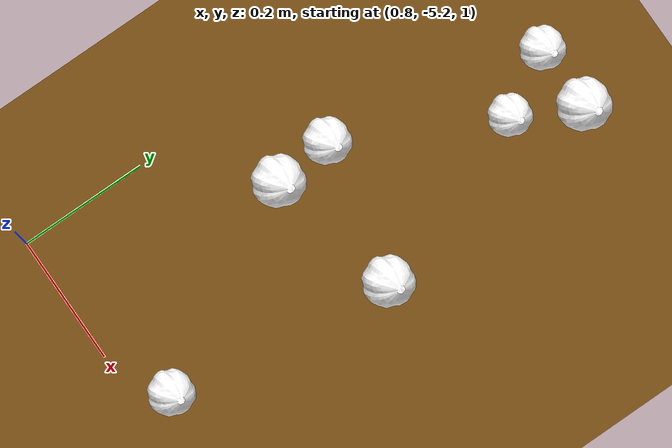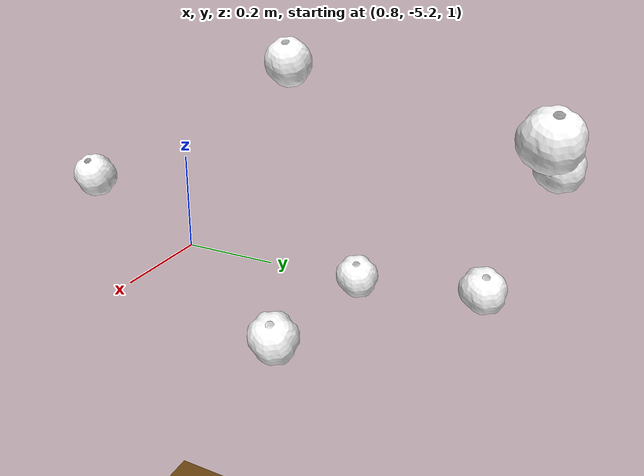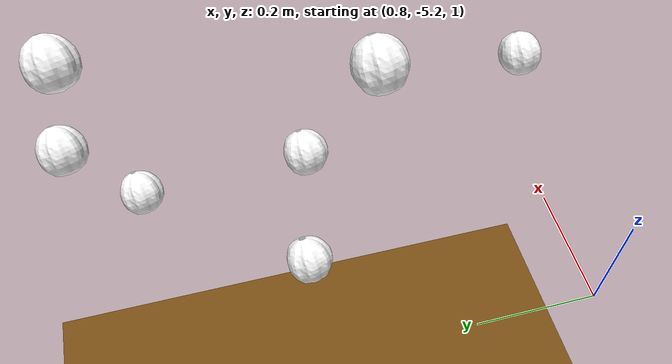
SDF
<sdf version="1.10">
 <world name="field">
  <model name="ground_plane">
   <static>true</static>
   <pose>0 0 -0.025 0 0 0</pose>
   <link name="ground_link">
    <collision name="collision"><geometry><box><size>22 14 0.05</size></box></geometry></collision>
    <visual name="visual">
     <geometry><box><size>22 14 0.05</size></box></geometry>
     <material><ambient>0.45 0.29 0.07 1</ambient><diffuse>0.45 0.29 0.07 1</diffuse></material>
    </visual>
   </link>
  </model>
  <model name="tomato_30_fruit_0">
   <static>true</static>
   <pose>0.97157693216541974 -4.8698195965206086 1.439069676920731 0 0 0</pose>
   <link name="fruit_link">
    <collision name="fruit_collision">
     <geometry><sphere><radius>0.040359216238994702</radius></sphere></geometry>
    </collision>
    <visual name="fruit_visual">
     <geometry>
      <mesh>
       <uri>model://tomato_fruit/meshes/fruit.dae</uri>
       <scale>0.080718432477989405 0.080718432477989405 0.080718432477989405</scale>
      </mesh>
     </geometry>
     <material>
      <ambient>1 1 1 1</ambient>
      <diffuse>1 1 1 1</diffuse>
      <pbr>
       <metal>
        <albedo_map>model://tomato_0/materials/textures/AG15frt4.png</albedo_map>
        <metalness>0</metalness>
        <roughness>0.4</roughness>
       </metal>
      </pbr>
     </material>
    </visual>
   </link>
  </model>
  <model name="tomato_30_fruit_1">
   <static>true</static>
   <pose>0.93178580171471626 -4.7616701508730443 1.0847385455471206 0 0 0</pose>
   <link name="fruit_link">
    <collision name="fruit_collision">
     <geometry><sphere><radius>0.039006174222252658</radius></sphere></geometry>
    </collision>
    <visual name="fruit_visual">
     <geometry>
      <mesh>
       <uri>model://tomato_fruit/meshes/fruit.dae</uri>
       <scale>0.078012348444505317 0.078012348444505317 0.078012348444505317</scale>
      </mesh>
     </geometry>
     <material>
      <ambient>1 1 1 1</ambient>
      <diffuse>1 1 1 1</diffuse>
      <pbr>
       <metal>
        <albedo_map>model://tomato_0/materials/textures/AG15frt1.png</albedo_map>
        <metalness>0</metalness>
        <roughness>0.4</roughness>
       </metal>
      </pbr>
     </material>
    </visual>
   </link>
  </model>
  <model name="tomato_30_fruit_2">
   <static>true</static>
   <pose>1.1119743875390766 -5.1482364698474887 1.2593996133526393 0 0 0</pose>
   <link name="fruit_link">
    <collision name="fruit_collision">
     <geometry><sphere><radius>0.036425670198521165</radius></sphere></geometry>
    </collision>
    <visual name="fruit_visual">
     <geometry>
      <mesh>
       <uri>model://tomato_fruit/meshes/fruit.dae</uri>
       <scale>0.07285134039704233 0.07285134039704233 0.07285134039704233</scale>
      </mesh>
     </geometry>
     <material>
      <ambient>1 1 1 1</ambient>
      <diffuse>1 1 1 1</diffuse>
      <pbr>
       <metal>
        <albedo_map>model://tomato_0/materials/textures/AG15frt4.png</albedo_map>
        <metalness>0</metalness>
        <roughness>0.4</roughness>
       </metal>
      </pbr>
     </material>
    </visual>
   </link>
  </model>
  <model name="tomato_30_fruit_3">
   <static>true</static>
   <pose>1.147269955028515 -4.8043249175127238 1.0738772094507989 0 0 0</pose>
   <link name="fruit_link">
    <collision name="fruit_collision">
     <geometry><sphere><radius>0.042334963771350868</radius></sphere></geometry>
    </collision>
    <visual name="fruit_visual">
     <geometry>
      <mesh>
       <uri>model://tomato_fruit/meshes/fruit.dae</uri>
       <scale>0.084669927542701737 0.084669927542701737 0.084669927542701737</scale>
      </mesh>
     </geometry>
     <material>
      <ambient>1 1 1 1</ambient>
      <diffuse>1 1 1 1</diffuse>
      <pbr>
       <metal>
        <albedo_map>model://tomato_0/materials/textures/AG15frt4.png</albedo_map>
        <metalness>0</metalness>
        <roughness>0.4</roughness>
       </metal>
      </pbr>
     </material>
    </visual>
   </link>
  </model>
  <model name="tomato_31_fruit_0">
   <static>true</static>
   <pose>1.0566773404864809 -4.5347559090507952 1.1718466183655836 0 0 0</pose>
   <link name="fruit_link">
    <collision name="fruit_collision">
     <geometry><sphere><radius>0.034834568744716771</radius></sphere></geometry>
    </collision>
    <visual name="fruit_visual">
     <geometry>
      <mesh>
       <uri>model://tomato_fruit/meshes/fruit.dae</uri>
       <scale>0.069669137489433541 0.069669137489433541 0.069669137489433541</scale>
      </mesh>
     </geometry>
     <material>
      <ambient>1 1 1 1</ambient>
      <diffuse>1 1 1 1</diffuse>
      <pbr>
       <metal>
        <albedo_map>model://tomato_0/materials/textures/AG15frt1.png</albedo_map>
        <metalness>0</metalness>
        <roughness>0.4</roughness>
       </metal>
      </pbr>
     </material>
    </visual>
   </link>
  </model>
  <model name="tomato_31_fruit_1">
   <static>true</static>
   <pose>1.1164597028555676 -4.4709680070952036 1.3988947512748255 0 0 0</pose>
   <link name="fruit_link">
    <collision name="fruit_collision">
     <geometry><sphere><radius>0.04125714422740509</radius></sphere></geometry>
    </collision>
    <visual name="fruit_visual">
     <geometry>
      <mesh>
       <uri>model://tomato_fruit/meshes/fruit.dae</uri>
       <scale>0.082514288454810181 0.082514288454810181 0.082514288454810181</scale>
      </mesh>
     </geometry>
     <material>
      <ambient>1 1 1 1</ambient>
      <diffuse>1 1 1 1</diffuse>
      <pbr>
       <metal>
        <albedo_map>model://tomato_0/materials/textures/AG15frt1.png</albedo_map>
        <metalness>0</metalness>
        <roughness>0.4</roughness>
       </metal>
      </pbr>
     </material>
    </visual>
   </link>
  </model>
  <model name="tomato_31_fruit_2">
   <static>true</static>
   <pose>1.0178434174487081 -4.4651662017040863 1.341284952673941 0 0 0</pose>
   <link name="fruit_link">
    <collision name="fruit_collision">
     <geometry><sphere><radius>0.034875212518331394</radius></sphere></geometry>
    </collision>
    <visual name="fruit_visual">
     <geometry>
      <mesh>
       <uri>model://tomato_fruit/meshes/fruit.dae</uri>
       <scale>0.069750425036662789 0.069750425036662789 0.069750425036662789</scale>
      </mesh>
     </geometry>
     <material>
      <ambient>1 1 1 1</ambient>
      <diffuse>1 1 1 1</diffuse>
      <pbr>
       <metal>
        <albedo_map>model://tomato_0/materials/textures/AG15frt1.png</albedo_map>
        <metalness>0</metalness>
        <roughness>0.4</roughness>
       </metal>
      </pbr>
     </material>
    </visual>
   </link>
  </model>
 </world>
</sdf>
